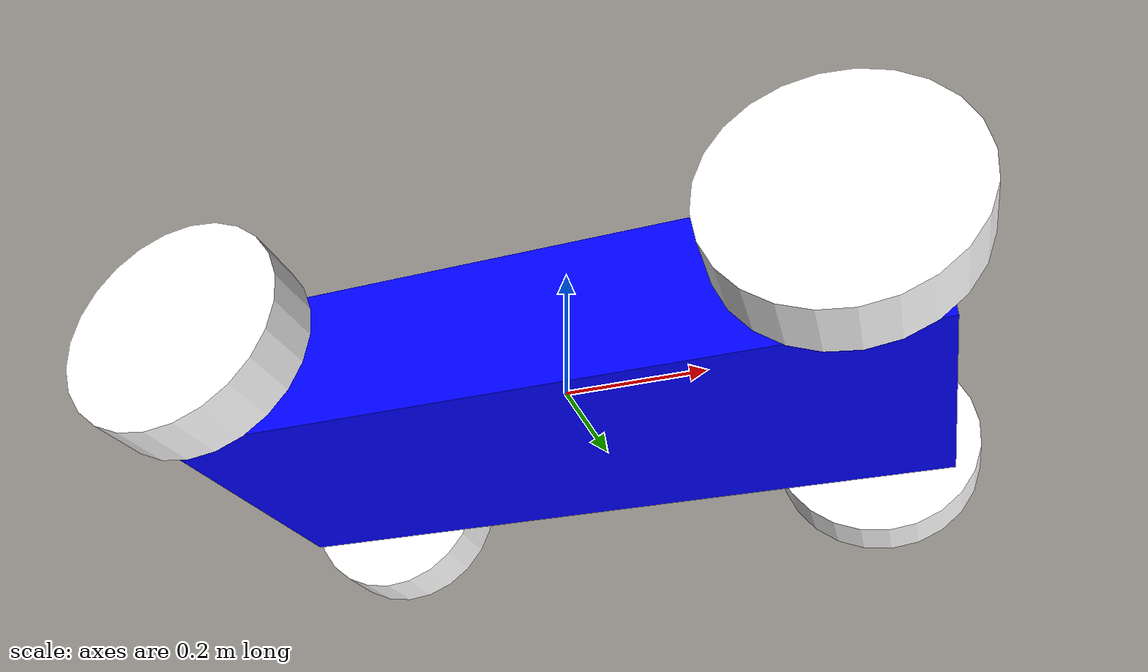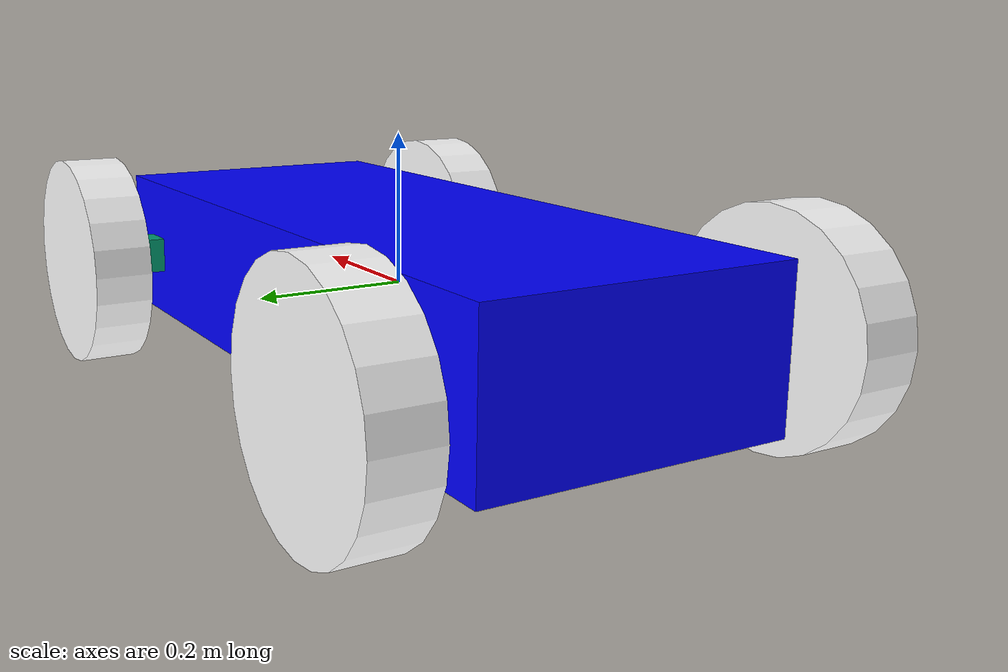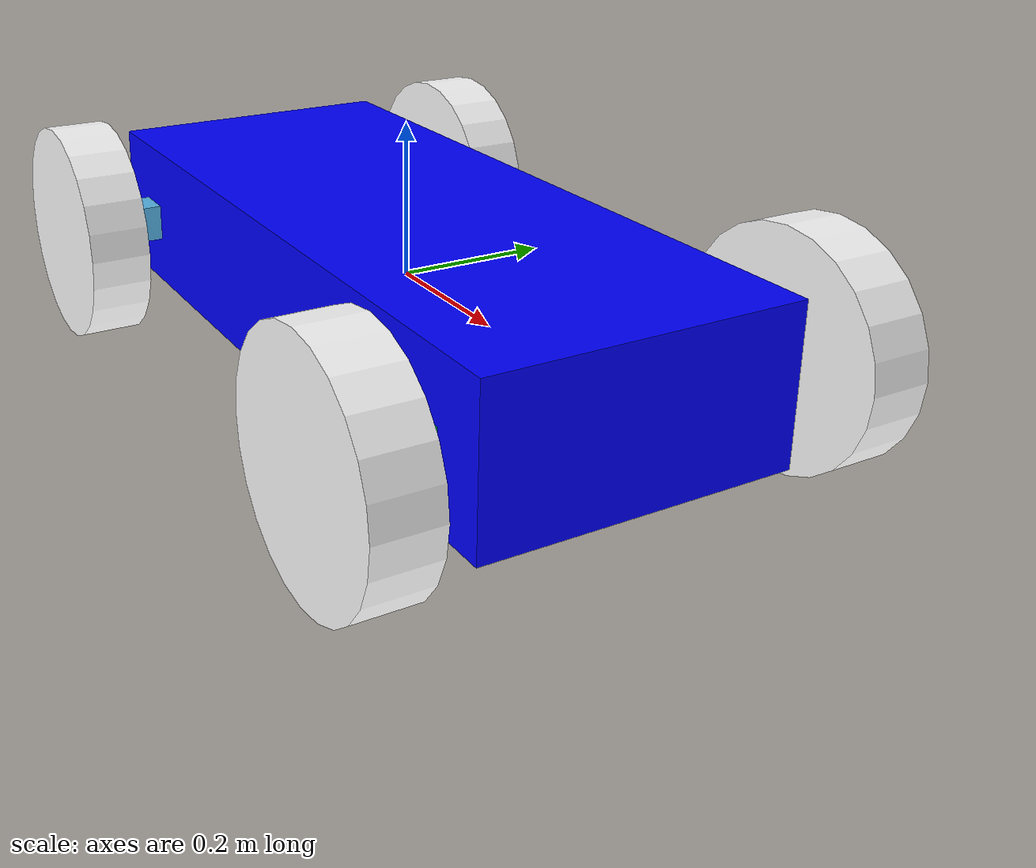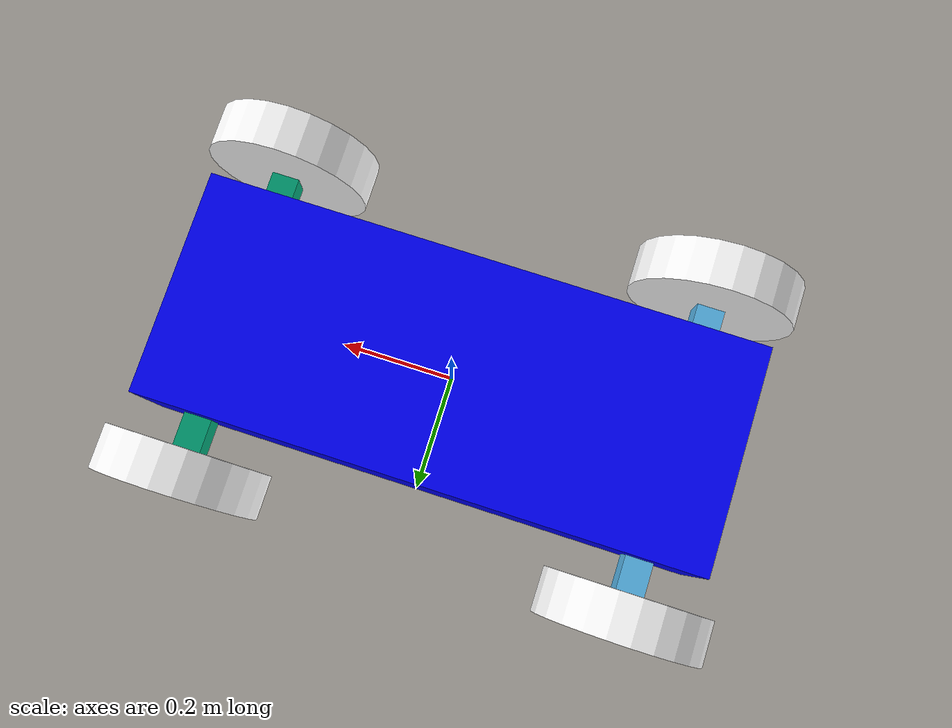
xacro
<?xml version="1.0"?>
<robot name="evrim4" xmlns:xacro="http://ros.org/wiki/xacro">

											<!-- DEGISKENLER -->

<xacro:property name="uzunluk" value="1.0" />
<xacro:property name="genislik" value="0.4" />
<xacro:property name="yukseklik" value="0.2" />
<xacro:property name="ta_uzunluk" value="0.05" />
<xacro:property name="ta_genislik" value="0.6" />
<xacro:property name="ta_yukseklik" value="0.05" />
<xacro:property name="k_uzunluk" value="0.01" />
<xacro:property name="k_radius" value="0.03" />
<xacro:property name="te_uzunluk" value="0.08" />
<xacro:property name="te_radius" value="0.15" />
<xacro:property name="pi" value="3.1415" />

													<!-- RENKLER -->
	<material name="mavi">
		<color rgba="0 0 1 1"/>
	</material>
	<material name="siyah">
		<color rgba="1 1 1 1"/>
	</material>
	<material name="beyaz">
		<color rgba="0 0 0 1"/>
	</material>
												<!-- AGIRLIK GIRDISI -->
  <xacro:macro name="agirlik" params="mass">
    <inertial>
      <mass value="${mass}" />
      <inertia ixx="1.0" ixy="0.0" ixz="0.0" iyy="1.0" iyz="0.0" izz="1.0" />
    </inertial>
  </xacro:macro>

												<!-- ANA GOVDE -->

	<link name="ana_govde">
		<visual>
			<geometry>
				<box size="${uzunluk} ${genislik} ${yukseklik}"/>
			</geometry>
			<material name="mavi"/>
		</visual>
		<collision>
			<geometry>
				<box size="${uzunluk} ${genislik} ${yukseklik}"/>
			</geometry>
		</collision>
	  <xacro:agirlik mass="10"/>
	</link>
												<!-- ARKA TASIYICI -->
	<link name="arka_tasiyici">
		<visual>
			<geometry>
				<box size="${ta_uzunluk} ${ta_genislik} ${ta_yukseklik}"/>
			</geometry>
		</visual>
		<collision>
			<geometry>
				<box size="${ta_uzunluk} ${ta_genislik} ${ta_yukseklik}"/>
			</geometry>
		</collision>
	  <xacro:agirlik mass="3"/>
	</link>

	<joint name="arka_tasiyici_joint" type="fixed">
		<parent link="ana_govde"/>
		<child link="arka_tasiyici"/>
		<origin xyz="-0.4 0 -0.008"/>
	</joint>
												<!-- ON TASIYICI -->
	<link name="on_tasiyici">
		<visual>
			<geometry>
				<box size="${ta_uzunluk} ${ta_genislik} ${ta_yukseklik}"/>
			</geometry>
		</visual>
		<collision>
			<geometry>
				<box size="${ta_uzunluk} ${ta_genislik} ${ta_yukseklik}"/>
			</geometry>
		</collision>
	  <xacro:agirlik mass="3"/>
	</link>

	<joint name="on_tasiyici_joint" type="fixed">
		<parent link="ana_govde"/>
		<child link="on_tasiyici"/>
		<origin xyz="0.4 0 -0.008"/>
	</joint>
												<!-- ARKA TEKERLEK -->
														<!--  arka/on ,sol/sag, sol/sag konum degeri-->
  <xacro:macro name="teker" params="prefix suffix reflect">
    <link name="${prefix}_${suffix}_teker">
      <visual>
        <origin xyz="0 0 0" rpy="0 ${pi/2} ${pi/2}" />
        <geometry>
          <cylinder radius="${te_radius}" length="${te_uzunluk}"/>
        </geometry>
        <material name="siyah"/>
      </visual>
      <collision>
        <origin xyz="0 0 0" rpy="0 ${pi/2} ${pi/2}" />
        <geometry>
          <cylinder radius="${te_radius}" length="${te_uzunluk}"/>
        </geometry>
      </collision>
      <xacro:agirlik mass="2"/>
    </link>
    <joint name="${prefix}_${suffix}_teker_joint" type="continuous">
      <axis xyz="0 1 0" rpy="0 0 0" />
      <parent link="${prefix}_tasiyici"/>
      <child link="${prefix}_${suffix}_teker"/>
      <origin xyz="0 ${reflect*0.3} 0 " rpy="0 0 0"/>
    </joint>

    <gazebo reference="${prefix}_${suffix}_teker">
      <mu1 value="200.0"/>
      <mu2 value="100.0"/>
      <kp value="10000000.0"/>
      <kd value="1.0"/>
      <material>Gazebo/Grey</material>
    </gazebo>

    <transmission name="${prefix}_${suffix}_teker_trans">
      <type>transmission_interface/SimpleTransmission</type>
      <actuator name="${prefix}_${suffix}_teker_motor">
        <mechanicalReduction>1</mechanicalReduction>
      </actuator>
      <joint name="${prefix}_${suffix}_teker_joint">
				<hardwareInterface>VelocityJointInterface</hardwareInterface>
      </joint>
    </transmission>

  </xacro:macro>

  <xacro:teker prefix="arka" suffix="sol" reflect="1" />
  <xacro:teker prefix="arka" suffix="sag" reflect="-1" />

												<!-- KRAMER -->

														<!-- ON TEKERLEK -->
														 <!--  arka/on ,sol/sag, sol/sag(+/-) konum degeri-->
  <xacro:macro name="o_teker" params="prefix suffix reflect">

    <link name="${prefix}_${suffix}_teker">
      <visual>
        <origin xyz="0 0 0" rpy="0 ${pi/2} ${pi/2}" />
        <geometry>
          <cylinder radius="${te_radius}" length="${te_uzunluk}"/>
        </geometry>
        <material name="siyah"/>
      </visual>
      <collision>
        <origin xyz="0 0 0" rpy="0 ${pi/2} ${pi/2}" />
        <geometry>
          <cylinder radius="${te_radius}" length="${te_uzunluk}"/>
        </geometry>
      </collision>
      <xacro:agirlik mass="2"/>
    </link>

    <joint name="${prefix}_${suffix}_teker_joint" type="continuous">
      <axis xyz="0 1 0" rpy="0 0 0" />
      <parent link="${prefix}_tasiyici"/>
      <child link="${prefix}_${suffix}_teker"/>
      <origin xyz="0 ${reflect*0.3} 0 " rpy="0 0 0"/>
    </joint>

    <gazebo reference="${prefix}_${suffix}_teker">
      <mu1 value="200.0"/>
      <mu2 value="100.0"/>
      <kp value="10000000.0"/>
      <kd value="1.0"/>
      <material>Gazebo/Grey</material>
    </gazebo>

    <transmission name="${prefix}_${suffix}_teker_trans">
      <type>transmission_interface/SimpleTransmission</type>
      <actuator name="${prefix}_${suffix}_teker_motor">
        <mechanicalReduction>1</mechanicalReduction>
      </actuator>
      <joint name="${prefix}_${suffix}_teker_joint">
				<hardwareInterface>VelocityJointInterface</hardwareInterface>
      </joint>
    </transmission>

  </xacro:macro>

  <xacro:o_teker prefix="on" suffix="sol" reflect="1" />
  <xacro:o_teker prefix="on" suffix="sag" reflect="-1" />

  <gazebo>
    <plugin name="gazebo_ros_control" filename="libgazebo_ros_control.so">
      <robotNamespace>/</robotNamespace>
      <legacyModeNS>true</legacyModeNS>
    </plugin>
  </gazebo>

</robot>
